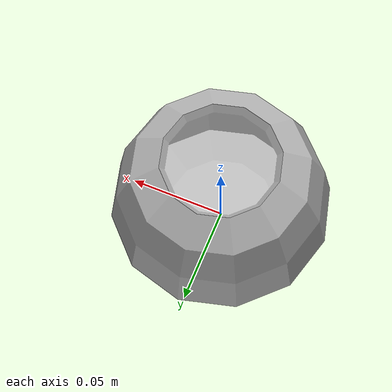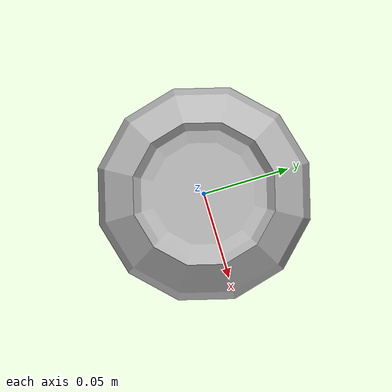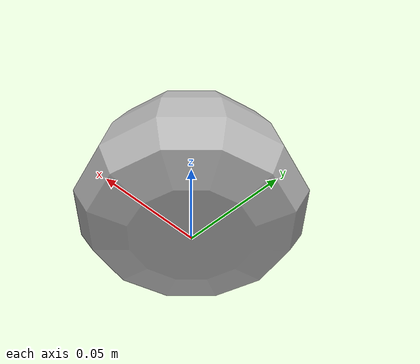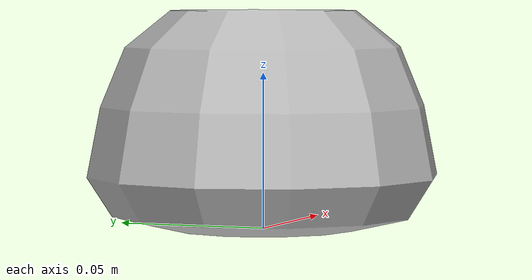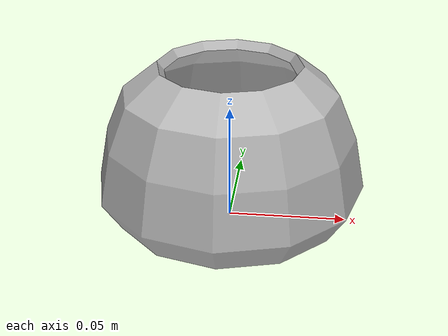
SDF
<?xml version='1.0'?>
<sdf version="1.4">
	<model name="sugar_pot">
		<static>1</static>
		<link name="link">
			<visual name="mesh">
				<geometry>
					<mesh>
						<uri>model://meshes/sugar_pot.dae</uri>
					</mesh>
				</geometry>
			</visual>
			<collision name="collider">
				<pose>0 0 0.035 0 0 0</pose>
				<geometry>
					<cylinder>
						<radius>0.055</radius>
						<length>0.07</length>
					</cylinder>
				</geometry>
			</collision>
		</link>
	</model>
</sdf>
